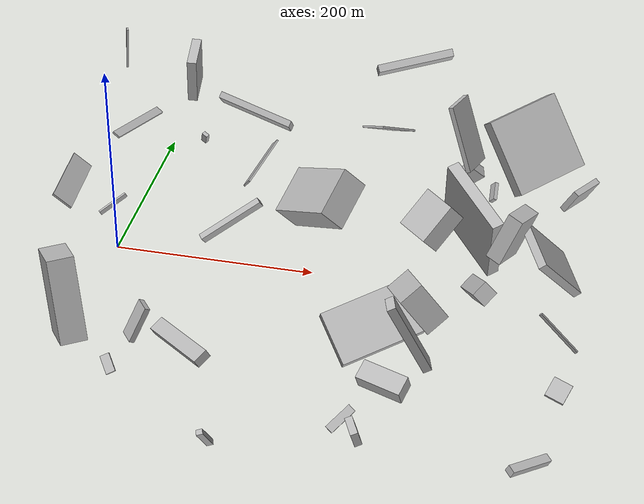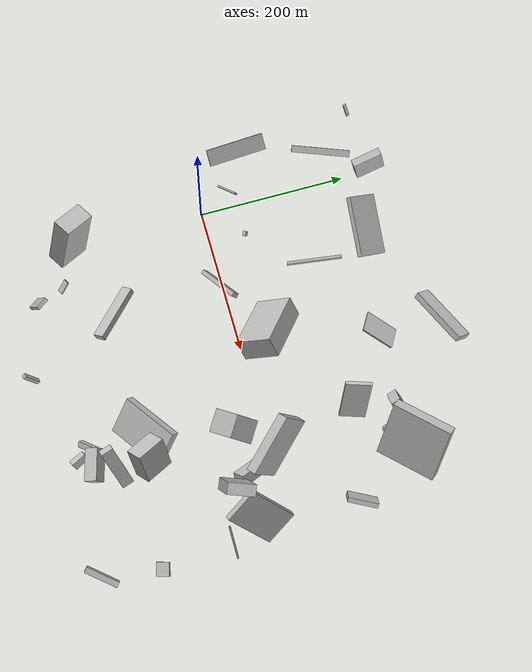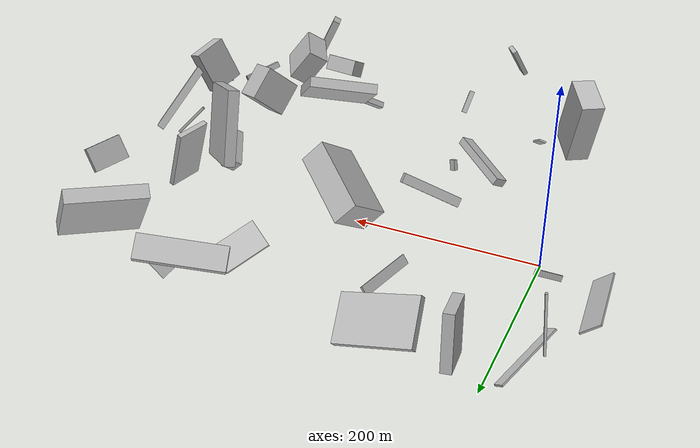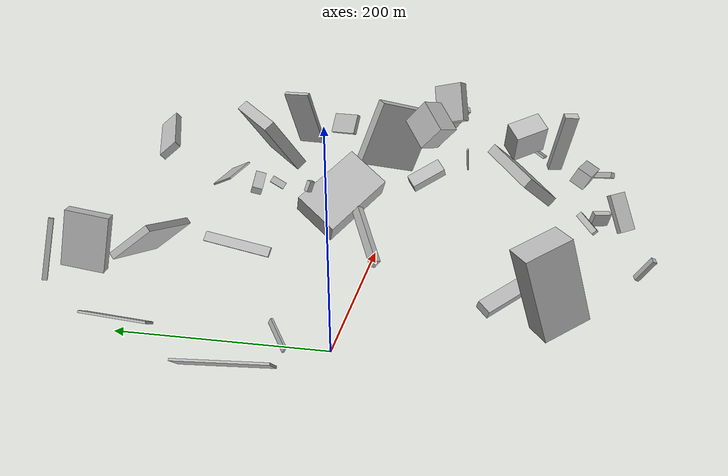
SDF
<sdf version="1.6">
 <world name="default">
  <scene>
   <sky><clouds><speed>12</speed></clouds></sky>
   <ambient>0.4 0.4 0.4 1</ambient>
   <background>0.7 0.7 0.7 1</background>
   <shadows>1</shadows>
  </scene>
  <gravity>0 0 -9.8066</gravity>
  <magnetic_field>6e-06 2.3e-05 -4.2e-05</magnetic_field>
  <physics default="0" name="default_physics" type="ode">
   <ode>
    <solver>
     <type>quick</type>
     <iters>10</iters>
     <sor>1.0</sor>
     <use_dynamic_moi_rescaling>0</use_dynamic_moi_rescaling>
    </solver>
    <constraints>
     <cfm>0</cfm>
     <erp>0.2</erp>
     <contact_max_correcting_vel>100</contact_max_correcting_vel>
     <contact_surface_layer>0.001</contact_surface_layer>
    </constraints>
   </ode>
   <max_step_size>0.004</max_step_size>
   <real_time_factor>1</real_time_factor>
   <real_time_update_rate>250</real_time_update_rate>
  </physics>
  <light name="sun" type="directional">
   <pose>0 0 10 0 0 0</pose>
   <diffuse>0.8 0.8 0.8 1</diffuse>
   <specular>0.2 0.2 0.2 1</specular>
   <attenuation>
    <range>1000</range>
    <constant>0.9</constant>
    <linear>0.01</linear>
    <quadratic>0.001</quadratic>
   </attenuation>
   <direction>-0.5 0.1 -0.9</direction>
  </light>
  <model name="building_1">
   <static>0</static>
   <pose>93.40407052072155 204.93474136452554 52.92979006316356 2.4521739421434536 0.2988004322395404 -0.06578543005111342</pose>
   <link name="link">
    <gravity>0</gravity>
    <pose>0 0 3.5 0 0 0</pose>
    <collision name="collision"><geometry><box><size>80 47 7</size></box></geometry></collision>
    <visual name="visual">
     <cast_shadows>0</cast_shadows>
     <geometry><box><size>80 47 7</size></box></geometry>
     <material>
      <script>
       <uri>model://HANNAS_wall/materials/scripts</uri>
       <uri>model://HANNAS_wall/materials/textures</uri>
       <name>vrc/HANNAS_wall</name>
      </script>
     </material>
    </visual>
   </link>
  </model>
  <model name="building_2">
   <static>0</static>
   <pose>363.42149965624685 147.94602853316457 62.00128344306975 -1.3557386449729376 0.9163186872607153 -0.6302967982784358</pose>
   <link name="link">
    <gravity>0</gravity>
    <pose>0 0 40.0 0 0 0</pose>
    <collision name="collision"><geometry><box><size>80 15 80</size></box></geometry></collision>
    <visual name="visual">
     <cast_shadows>0</cast_shadows>
     <geometry><box><size>80 15 80</size></box></geometry>
     <material>
      <script>
       <uri>model://HANNAS_wall/materials/scripts</uri>
       <uri>model://HANNAS_wall/materials/textures</uri>
       <name>vrc/HANNAS_wall</name>
      </script>
     </material>
    </visual>
   </link>
  </model>
  <model name="building_3">
   <static>0</static>
   <pose>16.390304876597806 244.62404559630852 83.00786007755211 -2.916884527602955 1.369245821116274 1.9171640286519678</pose>
   <link name="link">
    <gravity>0</gravity>
    <pose>0 0 19.5 0 0 0</pose>
    <collision name="collision"><geometry><box><size>53 10 39</size></box></geometry></collision>
    <visual name="visual">
     <cast_shadows>0</cast_shadows>
     <geometry><box><size>53 10 39</size></box></geometry>
     <material>
      <script>
       <uri>model://HANNAS_wall/materials/scripts</uri>
       <uri>model://HANNAS_wall/materials/textures</uri>
       <name>vrc/HANNAS_wall</name>
      </script>
     </material>
    </visual>
   </link>
  </model>
  <model name="building_4">
   <static>0</static>
   <pose>441.17306129854944 90.21098625250453 59.7818014011776 0.12034278533550744 -0.5078098112801493 2.613592267865957</pose>
   <link name="link">
    <gravity>0</gravity>
    <pose>0 0 13.0 0 0 0</pose>
    <collision name="collision"><geometry><box><size>6 39 26</size></box></geometry></collision>
    <visual name="visual">
     <cast_shadows>0</cast_shadows>
     <geometry><box><size>6 39 26</size></box></geometry>
     <material>
      <script>
       <uri>model://HANNAS_wall/materials/scripts</uri>
       <uri>model://HANNAS_wall/materials/textures</uri>
       <name>vrc/HANNAS_wall</name>
      </script>
     </material>
    </visual>
   </link>
  </model>
  <model name="building_5">
   <static>0</static>
   <pose>447.79698135431204 -253.4799489382732 17.02879522062613 0.6155891537954722 1.121828180324749 3.0268868902551094</pose>
   <link name="link">
    <gravity>0</gravity>
    <pose>0 0 4.0 0 0 0</pose>
    <collision name="collision"><geometry><box><size>7 46 8</size></box></geometry></collision>
    <visual name="visual">
     <cast_shadows>0</cast_shadows>
     <geometry><box><size>7 46 8</size></box></geometry>
     <material>
      <script>
       <uri>model://HANNAS_wall/materials/scripts</uri>
       <uri>model://HANNAS_wall/materials/textures</uri>
       <name>vrc/HANNAS_wall</name>
      </script>
     </material>
    </visual>
   </link>
  </model>
  <model name="building_6">
   <static>0</static>
   <pose>83.52735295152134 39.47332486646957 113.33492118256395 -0.33562912494550595 0.17223667170180737 -2.104775935625659</pose>
   <link name="link">
    <gravity>0</gravity>
    <pose>0 0 5.0 0 0 0</pose>
    <collision name="collision"><geometry><box><size>4 6 10</size></box></geometry></collision>
    <visual name="visual">
     <cast_shadows>0</cast_shadows>
     <geometry><box><size>4 6 10</size></box></geometry>
     <material>
      <script>
       <uri>model://HANNAS_wall/materials/scripts</uri>
       <uri>model://HANNAS_wall/materials/textures</uri>
       <name>vrc/HANNAS_wall</name>
      </script>
     </material>
    </visual>
   </link>
  </model>
  <model name="building_7">
   <static>0</static>
   <pose>393.4423886867271 -76.4460186594887 123.19449859536698 1.844249178224643 -0.30306497376230085 2.7446335173209584</pose>
   <link name="link">
    <gravity>0</gravity>
    <pose>0 0 18.0 0 0 0</pose>
    <collision name="collision"><geometry><box><size>15 47 36</size></box></geometry></collision>
    <visual name="visual">
     <cast_shadows>0</cast_shadows>
     <geometry><box><size>15 47 36</size></box></geometry>
     <material>
      <script>
       <uri>model://HANNAS_wall/materials/scripts</uri>
       <uri>model://HANNAS_wall/materials/textures</uri>
       <name>vrc/HANNAS_wall</name>
      </script>
     </material>
    </visual>
   </link>
  </model>
  <model name="building_8">
   <static>0</static>
   <pose>327.43846635845694 -188.43595169396497 96.52402265881258 1.6256622364936661 -0.43376770214199656 0.28686483211857033</pose>
   <link name="link">
    <gravity>0</gravity>
    <pose>0 0 8.0 0 0 0</pose>
    <collision name="collision"><geometry><box><size>8 80 16</size></box></geometry></collision>
    <visual name="visual">
     <cast_shadows>0</cast_shadows>
     <geometry><box><size>8 80 16</size></box></geometry>
     <material>
      <script>
       <uri>model://HANNAS_wall/materials/scripts</uri>
       <uri>model://HANNAS_wall/materials/textures</uri>
       <name>vrc/HANNAS_wall</name>
      </script>
     </material>
    </visual>
   </link>
  </model>
  <model name="building_9">
   <static>0</static>
   <pose>208.61197730452398 40.300085959345594 54.70234974960086 -0.5431325809774236 -0.5764822297622527 1.2184852326169686</pose>
   <link name="link">
    <gravity>0</gravity>
    <pose>0 0 14.5 0 0 0</pose>
    <collision name="collision"><geometry><box><size>50 80 29</size></box></geometry></collision>
    <visual name="visual">
     <cast_shadows>0</cast_shadows>
     <geometry><box><size>50 80 29</size></box></geometry>
     <material>
      <script>
       <uri>model://HANNAS_wall/materials/scripts</uri>
       <uri>model://HANNAS_wall/materials/textures</uri>
       <name>vrc/HANNAS_wall</name>
      </script>
     </material>
    </visual>
   </link>
  </model>
  <model name="building_10">
   <static>0</static>
   <pose>21.682394615096413 -197.02755016349374 81.25331299430681 1.882095110624951 0.01866630381590732 -2.5887243739384105</pose>
   <link name="link">
    <gravity>0</gravity>
    <pose>0 0 21.5 0 0 0</pose>
    <collision name="collision"><geometry><box><size>25 80 43</size></box></geometry></collision>
    <visual name="visual">
     <cast_shadows>0</cast_shadows>
     <geometry><box><size>25 80 43</size></box></geometry>
     <material>
      <script>
       <uri>model://HANNAS_wall/materials/scripts</uri>
       <uri>model://HANNAS_wall/materials/textures</uri>
       <name>vrc/HANNAS_wall</name>
      </script>
     </material>
    </visual>
   </link>
  </model>
  <model name="building_11">
   <static>0</static>
   <pose>329.35624660029697 169.044489534616 21.50291007747447 -1.1639410633507634 -0.708026079811952 -0.02355882467084492</pose>
   <link name="link">
    <gravity>0</gravity>
    <pose>0 0 6.5 0 0 0</pose>
    <collision name="collision"><geometry><box><size>23 17 13</size></box></geometry></collision>
    <visual name="visual">
     <cast_shadows>0</cast_shadows>
     <geometry><box><size>23 17 13</size></box></geometry>
     <material>
      <script>
       <uri>model://HANNAS_wall/materials/scripts</uri>
       <uri>model://HANNAS_wall/materials/textures</uri>
       <name>vrc/HANNAS_wall</name>
      </script>
     </material>
    </visual>
   </link>
  </model>
  <model name="building_12">
   <static>0</static>
   <pose>451.4373093053437 -171.5260275193167 41.88070209109226 2.066282060932203 1.01427410408732 1.7561464942703036</pose>
   <link name="link">
    <gravity>0</gravity>
    <pose>0 0 9.0 0 0 0</pose>
    <collision name="collision"><geometry><box><size>3 19 18</size></box></geometry></collision>
    <visual name="visual">
     <cast_shadows>0</cast_shadows>
     <geometry><box><size>3 19 18</size></box></geometry>
     <material>
      <script>
       <uri>model://HANNAS_wall/materials/scripts</uri>
       <uri>model://HANNAS_wall/materials/textures</uri>
       <name>vrc/HANNAS_wall</name>
      </script>
     </material>
    </visual>
   </link>
  </model>
  <model name="building_13">
   <static>0</static>
   <pose>353.77341143045635 157.60591647616738 15.71415417216866 2.2913445244026196 0.8153053022392632 2.501115780652344</pose>
   <link name="link">
    <gravity>0</gravity>
    <pose>0 0 2.0 0 0 0</pose>
    <collision name="collision"><geometry><box><size>9 19 4</size></box></geometry></collision>
    <visual name="visual">
     <cast_shadows>0</cast_shadows>
     <geometry><box><size>9 19 4</size></box></geometry>
     <material>
      <script>
       <uri>model://HANNAS_wall/materials/scripts</uri>
       <uri>model://HANNAS_wall/materials/textures</uri>
       <name>vrc/HANNAS_wall</name>
      </script>
     </material>
    </visual>
   </link>
  </model>
  <model name="building_14">
   <static>0</static>
   <pose>288.2793294663464 -147.66008935136767 63.35275957704738 0.683345896496347 -0.21074007390650096 0.5897604466194705</pose>
   <link name="link">
    <gravity>0</gravity>
    <pose>0 0 6.0 0 0 0</pose>
    <collision name="collision"><geometry><box><size>80 50 12</size></box></geometry></collision>
    <visual name="visual">
     <cast_shadows>0</cast_shadows>
     <geometry><box><size>80 50 12</size></box></geometry>
     <material>
      <script>
       <uri>model://HANNAS_wall/materials/scripts</uri>
       <uri>model://HANNAS_wall/materials/textures</uri>
       <name>vrc/HANNAS_wall</name>
      </script>
     </material>
    </visual>
   </link>
  </model>
  <model name="building_15">
   <static>0</static>
   <pose>107.49765927693113 -151.56943795186697 18.547401174028426 -2.9694935643837304 0.4674221999198893 -2.2312267670906794</pose>
   <link name="link">
    <gravity>0</gravity>
    <pose>0 0 4.5 0 0 0</pose>
    <collision name="collision"><geometry><box><size>15 80 9</size></box></geometry></collision>
    <visual name="visual">
     <cast_shadows>0</cast_shadows>
     <geometry><box><size>15 80 9</size></box></geometry>
     <material>
      <script>
       <uri>model://HANNAS_wall/materials/scripts</uri>
       <uri>model://HANNAS_wall/materials/textures</uri>
       <name>vrc/HANNAS_wall</name>
      </script>
     </material>
    </visual>
   </link>
  </model>
  <model name="building_16">
   <static>0</static>
   <pose>315.993348270296 -215.6075632658178 68.04934877574615 2.0570924626618057 0.08051266435918719 -0.2829608249139169</pose>
   <link name="link">
    <gravity>0</gravity>
    <pose>0 0 9.0 0 0 0</pose>
    <collision name="collision"><geometry><box><size>42 18 18</size></box></geometry></collision>
    <visual name="visual">
     <cast_shadows>0</cast_shadows>
     <geometry><box><size>42 18 18</size></box></geometry>
     <material>
      <script>
       <uri>model://HANNAS_wall/materials/scripts</uri>
       <uri>model://HANNAS_wall/materials/textures</uri>
       <name>vrc/HANNAS_wall</name>
      </script>
     </material>
    </visual>
   </link>
  </model>
  <model name="building_17">
   <static>0</static>
   <pose>102.66649500757556 -238.0602146573438 103.67451548462182 0.07963000082475853 1.0622540467209889 -2.43561125599365</pose>
   <link name="link">
    <gravity>0</gravity>
    <pose>0 0 2.5 0 0 0</pose>
    <collision name="collision"><geometry><box><size>34 16 5</size></box></geometry></collision>
    <visual name="visual">
     <cast_shadows>0</cast_shadows>
     <geometry><box><size>34 16 5</size></box></geometry>
     <material>
      <script>
       <uri>model://HANNAS_wall/materials/scripts</uri>
       <uri>model://HANNAS_wall/materials/textures</uri>
       <name>vrc/HANNAS_wall</name>
      </script>
     </material>
    </visual>
   </link>
  </model>
  <model name="building_18">
   <static>0</static>
   <pose>251.25556834007597 258.7020851252004 97.12121672504722 -0.23977834575096496 -0.8594773621859544 2.14048528505417</pose>
   <link name="link">
    <gravity>0</gravity>
    <pose>0 0 11.5 0 0 0</pose>
    <collision name="collision"><geometry><box><size>8 80 23</size></box></geometry></collision>
    <visual name="visual">
     <cast_shadows>0</cast_shadows>
     <geometry><box><size>8 80 23</size></box></geometry>
     <material>
      <script>
       <uri>model://HANNAS_wall/materials/scripts</uri>
       <uri>model://HANNAS_wall/materials/textures</uri>
       <name>vrc/HANNAS_wall</name>
      </script>
     </material>
    </visual>
   </link>
  </model>
  <model name="building_19">
   <static>0</static>
   <pose>-66.90483486583938 28.488267412030016 26.416961193425685 1.5932357302700515 -0.6920377725147067 -3.088380837753507</pose>
   <link name="link">
    <gravity>0</gravity>
    <pose>0 0 40.0 0 0 0</pose>
    <collision name="collision"><geometry><box><size>23 2 80</size></box></geometry></collision>
    <visual name="visual">
     <cast_shadows>0</cast_shadows>
     <geometry><box><size>23 2 80</size></box></geometry>
     <material>
      <script>
       <uri>model://HANNAS_wall/materials/scripts</uri>
       <uri>model://HANNAS_wall/materials/textures</uri>
       <name>vrc/HANNAS_wall</name>
      </script>
     </material>
    </visual>
   </link>
  </model>
  <model name="building_20">
   <static>0</static>
   <pose>110.91696693377921 88.83995282320785 34.78833220393498 -1.416843628765547 -0.8850735577870604 -0.28837891921127373</pose>
   <link name="link">
    <gravity>0</gravity>
    <pose>0 0 36.5 0 0 0</pose>
    <collision name="collision"><geometry><box><size>10 2 73</size></box></geometry></collision>
    <visual name="visual">
     <cast_shadows>0</cast_shadows>
     <geometry><box><size>10 2 73</size></box></geometry>
     <material>
      <script>
       <uri>model://HANNAS_wall/materials/scripts</uri>
       <uri>model://HANNAS_wall/materials/textures</uri>
       <name>vrc/HANNAS_wall</name>
      </script>
     </material>
    </visual>
   </link>
  </model>
  <model name="building_21">
   <static>0</static>
   <pose>359.1990435536697 6.8564555655112684 86.64110508977305 2.0972970109853857 -1.2052657856955502 -1.3707471116762346</pose>
   <link name="link">
    <gravity>0</gravity>
    <pose>0 0 6.0 0 0 0</pose>
    <collision name="collision"><geometry><box><size>80 80 12</size></box></geometry></collision>
    <visual name="visual">
     <cast_shadows>0</cast_shadows>
     <geometry><box><size>80 80 12</size></box></geometry>
     <material>
      <script>
       <uri>model://HANNAS_wall/materials/scripts</uri>
       <uri>model://HANNAS_wall/materials/textures</uri>
       <name>vrc/HANNAS_wall</name>
      </script>
     </material>
    </visual>
   </link>
  </model>
  <model name="building_22">
   <static>0</static>
   <pose>338.95893139877404 -170.35541124513716 105.13686867246831 1.86976368736209 0.5725908028346306 -2.4794233395995904</pose>
   <link name="link">
    <gravity>0</gravity>
    <pose>0 0 19.5 0 0 0</pose>
    <collision name="collision"><geometry><box><size>24 41 39</size></box></geometry></collision>
    <visual name="visual">
     <cast_shadows>0</cast_shadows>
     <geometry><box><size>24 41 39</size></box></geometry>
     <material>
      <script>
       <uri>model://HANNAS_wall/materials/scripts</uri>
       <uri>model://HANNAS_wall/materials/textures</uri>
       <name>vrc/HANNAS_wall</name>
      </script>
     </material>
    </visual>
   </link>
  </model>
  <model name="building_23">
   <static>0</static>
   <pose>328.31123978035475 112.26411726443303 110.14833327612364 0.18006089407720544 -1.2041957018331666 2.6696419147962667</pose>
   <link name="link">
    <gravity>0</gravity>
    <pose>0 0 2.5 0 0 0</pose>
    <collision name="collision"><geometry><box><size>69 33 5</size></box></geometry></collision>
    <visual name="visual">
     <cast_shadows>0</cast_shadows>
     <geometry><box><size>69 33 5</size></box></geometry>
     <material>
      <script>
       <uri>model://HANNAS_wall/materials/scripts</uri>
       <uri>model://HANNAS_wall/materials/textures</uri>
       <name>vrc/HANNAS_wall</name>
      </script>
     </material>
    </visual>
   </link>
  </model>
  <model name="building_24">
   <static>0</static>
   <pose>-51.43769093872541 212.9877222410877 103.18179017666904 -0.22137739618589206 -1.337355914413299 -1.0100401819526568</pose>
   <link name="link">
    <gravity>0</gravity>
    <pose>0 0 2.0 0 0 0</pose>
    <collision name="collision"><geometry><box><size>53 2 4</size></box></geometry></collision>
    <visual name="visual">
     <cast_shadows>0</cast_shadows>
     <geometry><box><size>53 2 4</size></box></geometry>
     <material>
      <script>
       <uri>model://HANNAS_wall/materials/scripts</uri>
       <uri>model://HANNAS_wall/materials/textures</uri>
       <name>vrc/HANNAS_wall</name>
      </script>
     </material>
    </visual>
   </link>
  </model>
  <model name="building_25">
   <static>0</static>
   <pose>-5.983110963778428 50.52774720697771 29.275884199783874 -2.627961567911523 1.0551159238703145 1.266908909541057</pose>
   <link name="link">
    <gravity>0</gravity>
    <pose>0 0 16.0 0 0 0</pose>
    <collision name="collision"><geometry><box><size>6 2 32</size></box></geometry></collision>
    <visual name="visual">
     <cast_shadows>0</cast_shadows>
     <geometry><box><size>6 2 32</size></box></geometry>
     <material>
      <script>
       <uri>model://HANNAS_wall/materials/scripts</uri>
       <uri>model://HANNAS_wall/materials/textures</uri>
       <name>vrc/HANNAS_wall</name>
      </script>
     </material>
    </visual>
   </link>
  </model>
  <model name="building_26">
   <static>0</static>
   <pose>445.5553019839448 -59.308937381179994 73.16546953672727 1.015989377816905 -0.8299435900057939 -2.1824752340243925</pose>
   <link name="link">
    <gravity>0</gravity>
    <pose>0 0 23.5 0 0 0</pose>
    <collision name="collision"><geometry><box><size>80 8 47</size></box></geometry></collision>
    <visual name="visual">
     <cast_shadows>0</cast_shadows>
     <geometry><box><size>80 8 47</size></box></geometry>
     <material>
      <script>
       <uri>model://HANNAS_wall/materials/scripts</uri>
       <uri>model://HANNAS_wall/materials/textures</uri>
       <name>vrc/HANNAS_wall</name>
      </script>
     </material>
    </visual>
   </link>
  </model>
  <model name="building_27">
   <static>0</static>
   <pose>326.9997170074035 -31.871949831361295 98.36302955762784 0.288067203813116 -0.7162576236246411 0.8025103807986547</pose>
   <link name="link">
    <gravity>0</gravity>
    <pose>0 0 18.0 0 0 0</pose>
    <collision name="collision"><geometry><box><size>40 30 36</size></box></geometry></collision>
    <visual name="visual">
     <cast_shadows>0</cast_shadows>
     <geometry><box><size>40 30 36</size></box></geometry>
     <material>
      <script>
       <uri>model://HANNAS_wall/materials/scripts</uri>
       <uri>model://HANNAS_wall/materials/textures</uri>
       <name>vrc/HANNAS_wall</name>
      </script>
     </material>
    </visual>
   </link>
  </model>
  <model name="building_28">
   <static>0</static>
   <pose>254.81274934249544 190.3233158569281 57.03200515870164 -1.1065643602111839 0.3772968895554706 2.595589926383184</pose>
   <link name="link">
    <gravity>0</gravity>
    <pose>0 0 23.0 0 0 0</pose>
    <collision name="collision"><geometry><box><size>31 2 46</size></box></geometry></collision>
    <visual name="visual">
     <cast_shadows>0</cast_shadows>
     <geometry><box><size>31 2 46</size></box></geometry>
     <material>
      <script>
       <uri>model://HANNAS_wall/materials/scripts</uri>
       <uri>model://HANNAS_wall/materials/textures</uri>
       <name>vrc/HANNAS_wall</name>
      </script>
     </material>
    </visual>
   </link>
  </model>
  <model name="building_29">
   <static>0</static>
   <pose>363.364069231881 -38.39294889306105 26.82245526096181 -0.6447951336302038 0.7644062725263583 -0.045889165645771376</pose>
   <link name="link">
    <gravity>0</gravity>
    <pose>0 0 8.5 0 0 0</pose>
    <collision name="collision"><geometry><box><size>16 44 17</size></box></geometry></collision>
    <visual name="visual">
     <cast_shadows>0</cast_shadows>
     <geometry><box><size>16 44 17</size></box></geometry>
     <material>
      <script>
       <uri>model://HANNAS_wall/materials/scripts</uri>
       <uri>model://HANNAS_wall/materials/textures</uri>
       <name>vrc/HANNAS_wall</name>
      </script>
     </material>
    </visual>
   </link>
  </model>
  <model name="building_30">
   <static>0</static>
   <pose>169.5821559319926 -279.55858592231414 17.794734528932064 0.6109671132929609 -0.9950075122067128 -1.8876092461715677</pose>
   <link name="link">
    <gravity>0</gravity>
    <pose>0 0 2.5 0 0 0</pose>
    <collision name="collision"><geometry><box><size>28 6 5</size></box></geometry></collision>
    <visual name="visual">
     <cast_shadows>0</cast_shadows>
     <geometry><box><size>28 6 5</size></box></geometry>
     <material>
      <script>
       <uri>model://HANNAS_wall/materials/scripts</uri>
       <uri>model://HANNAS_wall/materials/textures</uri>
       <name>vrc/HANNAS_wall</name>
      </script>
     </material>
    </visual>
   </link>
  </model>
  <model name="building_31">
   <static>0</static>
   <pose>268.89813176753387 -236.50528497876653 11.643824329859857 0.8156695694282636 0.7610084722644049 1.7859743577146492</pose>
   <link name="link">
    <gravity>0</gravity>
    <pose>0 0 14.0 0 0 0</pose>
    <collision name="collision"><geometry><box><size>7 8 28</size></box></geometry></collision>
    <visual name="visual">
     <cast_shadows>0</cast_shadows>
     <geometry><box><size>7 8 28</size></box></geometry>
     <material>
      <script>
       <uri>model://HANNAS_wall/materials/scripts</uri>
       <uri>model://HANNAS_wall/materials/textures</uri>
       <name>vrc/HANNAS_wall</name>
      </script>
     </material>
    </visual>
   </link>
  </model>
  <model name="building_32">
   <static>0</static>
   <pose>448.45115590701937 -78.78040207508397 27.774684978059057 0.8437372785671512 -0.1140755085868098 1.4744318626209751</pose>
   <link name="link">
    <gravity>0</gravity>
    <pose>0 0 1.5 0 0 0</pose>
    <collision name="collision"><geometry><box><size>2 53 3</size></box></geometry></collision>
    <visual name="visual">
     <cast_shadows>0</cast_shadows>
     <geometry><box><size>2 53 3</size></box></geometry>
     <material>
      <script>
       <uri>model://HANNAS_wall/materials/scripts</uri>
       <uri>model://HANNAS_wall/materials/textures</uri>
       <name>vrc/HANNAS_wall</name>
      </script>
     </material>
    </visual>
   </link>
  </model>
  <model name="building_33">
   <static>0</static>
   <pose>58.45038415526058 -205.36422322593432 22.9918913006926 -0.47316833372023553 -0.5837320550056971 2.2386279595030083</pose>
   <link name="link">
    <gravity>0</gravity>
    <pose>0 0 1.0 0 0 0</pose>
    <collision name="collision"><geometry><box><size>18 9 2</size></box></geometry></collision>
    <visual name="visual">
     <cast_shadows>0</cast_shadows>
     <geometry><box><size>18 9 2</size></box></geometry>
     <material>
      <script>
       <uri>model://HANNAS_wall/materials/scripts</uri>
       <uri>model://HANNAS_wall/materials/textures</uri>
       <name>vrc/HANNAS_wall</name>
      </script>
     </material>
    </visual>
   </link>
  </model>
  <model name="building_34">
   <static>0</static>
   <pose>94.76058304643148 -20.275359745585927 39.07883244452086 -0.6700756680539162 -0.9000581430448602 -1.8602961072973314</pose>
   <link name="link">
    <gravity>0</gravity>
    <pose>0 0 33.5 0 0 0</pose>
    <collision name="collision"><geometry><box><size>10 6 67</size></box></geometry></collision>
    <visual name="visual">
     <cast_shadows>0</cast_shadows>
     <geometry><box><size>10 6 67</size></box></geometry>
     <material>
      <script>
       <uri>model://HANNAS_wall/materials/scripts</uri>
       <uri>model://HANNAS_wall/materials/textures</uri>
       <name>vrc/HANNAS_wall</name>
      </script>
     </material>
    </visual>
   </link>
  </model>
  <model name="building_35">
   <static>0</static>
   <pose>-28.97894475539661 176.24043604343797 32.86468237206909 -1.079846331648426 0.13450074477513663 1.2580826435813872</pose>
   <link name="link">
    <gravity>0</gravity>
    <pose>0 0 4.5 0 0 0</pose>
    <collision name="collision"><geometry><box><size>80 2 9</size></box></geometry></collision>
    <visual name="visual">
     <cast_shadows>0</cast_shadows>
     <geometry><box><size>80 2 9</size></box></geometry>
     <material>
      <script>
       <uri>model://HANNAS_wall/materials/scripts</uri>
       <uri>model://HANNAS_wall/materials/textures</uri>
       <name>vrc/HANNAS_wall</name>
      </script>
     </material>
    </visual>
   </link>
  </model>
  <model name="building_36">
   <static>0</static>
   <pose>290.40166834207207 -244.27546347447858 27.336633209472105 -3.039028976218352 -0.2885853168349669 0.4303859722910852</pose>
   <link name="link">
    <gravity>0</gravity>
    <pose>0 0 8.0 0 0 0</pose>
    <collision name="collision"><geometry><box><size>7 21 16</size></box></geometry></collision>
    <visual name="visual">
     <cast_shadows>0</cast_shadows>
     <geometry><box><size>7 21 16</size></box></geometry>
     <material>
      <script>
       <uri>model://HANNAS_wall/materials/scripts</uri>
       <uri>model://HANNAS_wall/materials/textures</uri>
       <name>vrc/HANNAS_wall</name>
      </script>
     </material>
    </visual>
   </link>
  </model>
 </world>
</sdf>
